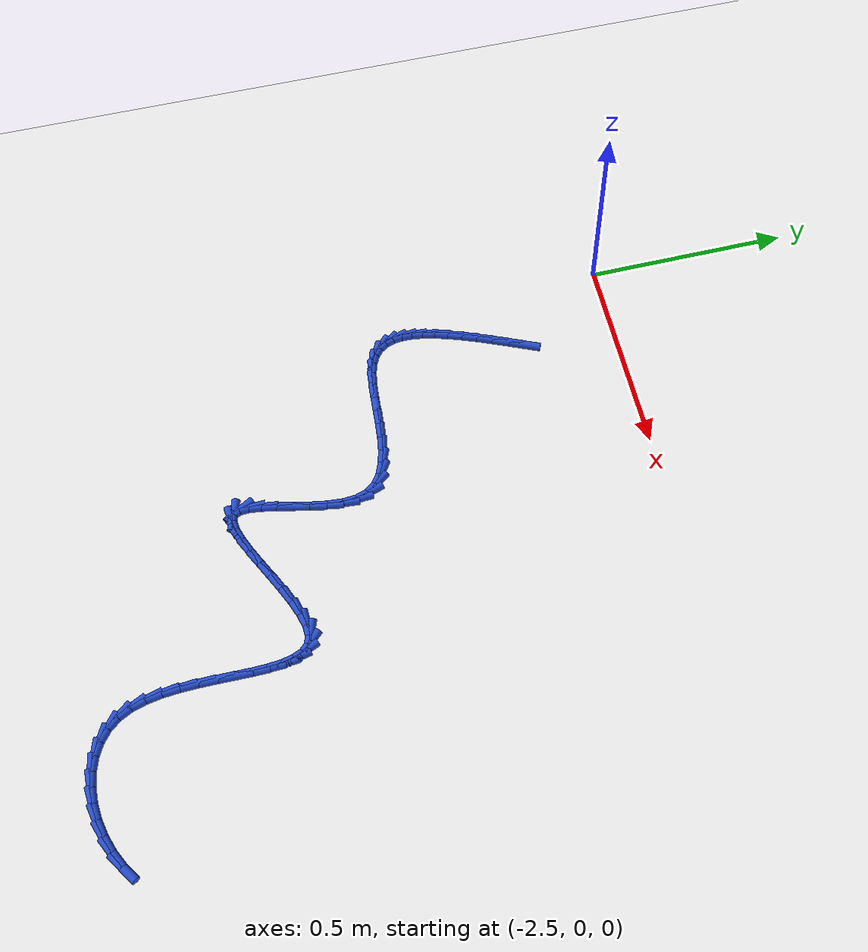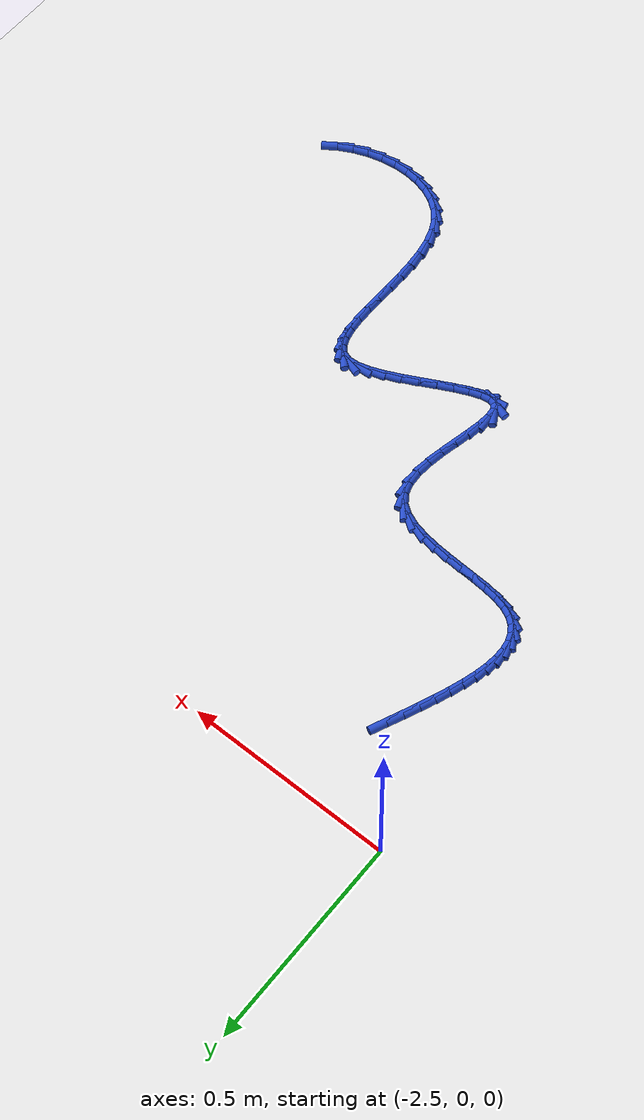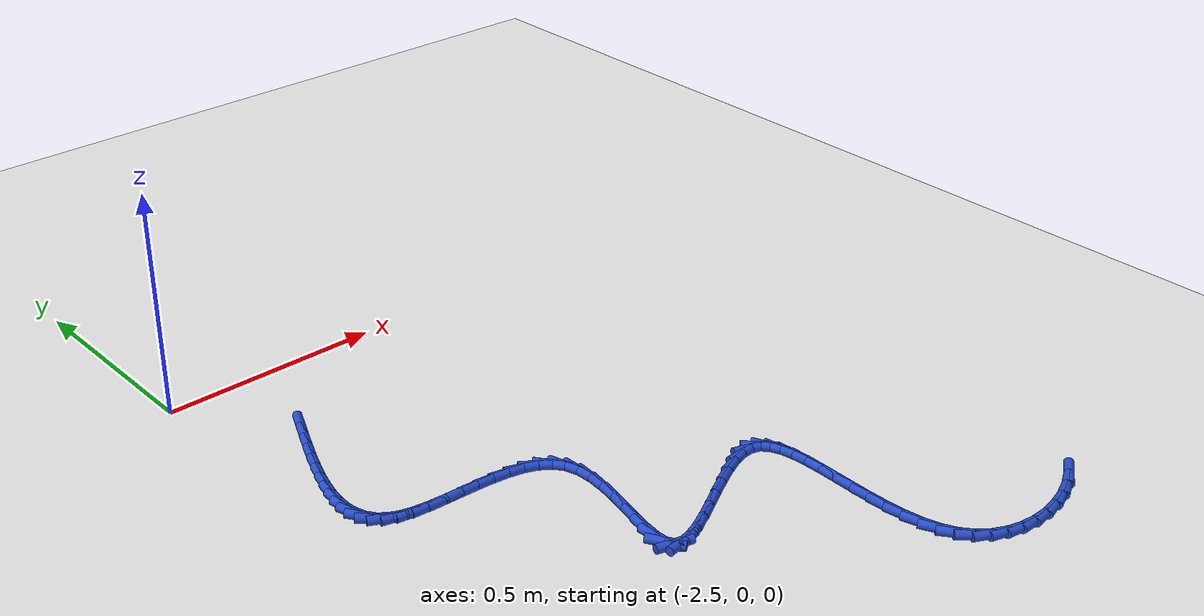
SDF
<sdf version="1.6">
 <world name="default">
  <model name="ground_plane">
   <static>1</static>
   <link name="link">
    <collision name="collision">
     <geometry><plane><normal>0 0 1</normal><size>100 100</size></plane></geometry>
     <surface><friction><ode><mu>100</mu><mu2>50</mu2></ode></friction></surface>
    </collision>
    <visual name="visual">
     <cast_shadows>0</cast_shadows>
     <geometry><plane><normal>0 0 1</normal><size>100 100</size></plane></geometry>
     <material>
      <script><uri>file://media/materials/scripts/gazebo.material</uri><name>Gazebo/WhiteGlow</name></script>
     </material>
    </visual>
   </link>
  </model>
  <model name="line">
   <link name="link_133">
    <pose>-2.3301631001318537 -0.2277371953926198 0.01 0 1.57 1.151415375953774</pose>
    <collision name="collision">
     <geometry><cylinder><radius>0.01</radius><length>0.08</length></cylinder></geometry>
    </collision>
    <visual name="visual">
     <material>
      <script><name>Gazebo/Blue</name><uri>file://media/materials/scripts/gazebo.material</uri></script>
     </material>
     <geometry><cylinder><radius>0.01</radius><length>0.08</length></cylinder></geometry>
    </visual>
   </link>
   <link name="link_134">
    <pose>-2.3469919819279452 -0.2654844812836014 0.01 0 1.57 1.1595146149284716</pose>
    <collision name="collision">
     <geometry><cylinder><radius>0.01</radius><length>0.08</length></cylinder></geometry>
    </collision>
    <visual name="visual">
     <material>
      <script><name>Gazebo/Blue</name><uri>file://media/materials/scripts/gazebo.material</uri></script>
     </material>
     <geometry><cylinder><radius>0.01</radius><length>0.08</length></cylinder></geometry>
    </visual>
   </link>
   <link name="link_135">
    <pose>-2.3630997488659737 -0.30241569647262956 0.01 0 1.57 1.1748796335003198</pose>
    <collision name="collision">
     <geometry><cylinder><radius>0.01</radius><length>0.08</length></cylinder></geometry>
    </collision>
    <visual name="visual">
     <material>
      <script><name>Gazebo/Blue</name><uri>file://media/materials/scripts/gazebo.material</uri></script>
     </material>
     <geometry><cylinder><radius>0.01</radius><length>0.08</length></cylinder></geometry>
    </visual>
   </link>
   <link name="link_136">
    <pose>-2.3781071469350885 -0.33831956997470136 0.01 0 1.57 1.1987318594139833</pose>
    <collision name="collision">
     <geometry><cylinder><radius>0.01</radius><length>0.08</length></cylinder></geometry>
    </collision>
    <visual name="visual">
     <material>
      <script><name>Gazebo/Blue</name><uri>file://media/materials/scripts/gazebo.material</uri></script>
     </material>
     <geometry><cylinder><radius>0.01</radius><length>0.08</length></cylinder></geometry>
    </visual>
   </link>
   <link name="link_137">
    <pose>-2.391634922124441 -0.3729848308048155 0.01 0 1.57 1.2329548355166566</pose>
    <collision name="collision">
     <geometry><cylinder><radius>0.01</radius><length>0.08</length></cylinder></geometry>
    </collision>
    <visual name="visual">
     <material>
      <script><name>Gazebo/Blue</name><uri>file://media/materials/scripts/gazebo.material</uri></script>
     </material>
     <geometry><cylinder><radius>0.01</radius><length>0.08</length></cylinder></geometry>
    </visual>
   </link>
   <link name="link_138">
    <pose>-2.4033038204231802 -0.40620020797796996 0.01 0 1.57 1.2803719867864458</pose>
    <collision name="collision">
     <geometry><cylinder><radius>0.01</radius><length>0.08</length></cylinder></geometry>
    </collision>
    <visual name="visual">
     <material>
      <script><name>Gazebo/Blue</name><uri>file://media/materials/scripts/gazebo.material</uri></script>
     </material>
     <geometry><cylinder><radius>0.01</radius><length>0.08</length></cylinder></geometry>
    </visual>
   </link>
   <link name="link_139">
    <pose>-2.4127345878204585 -0.4377544305091632 0.01 0 1.57 1.345157739945359</pose>
    <collision name="collision">
     <geometry><cylinder><radius>0.01</radius><length>0.08</length></cylinder></geometry>
    </collision>
    <visual name="visual">
     <material>
      <script><name>Gazebo/Blue</name><uri>file://media/materials/scripts/gazebo.material</uri></script>
     </material>
     <geometry><cylinder><radius>0.01</radius><length>0.08</length></cylinder></geometry>
    </visual>
   </link>
   <link name="link_140">
    <pose>-2.4195479703054232 -0.4674362274133933 0.01 0 1.57 1.4333707142312209</pose>
    <collision name="collision">
     <geometry><cylinder><radius>0.01</radius><length>0.08</length></cylinder></geometry>
    </collision>
    <visual name="visual">
     <material>
      <script><name>Gazebo/Blue</name><uri>file://media/materials/scripts/gazebo.material</uri></script>
     </material>
     <geometry><cylinder><radius>0.01</radius><length>0.08</length></cylinder></geometry>
    </visual>
   </link>
   <link name="link_141">
    <pose>-2.423364713867228 -0.495034327705658 0.01 0 1.57 1.553375320705802</pose>
    <collision name="collision">
     <geometry><cylinder><radius>0.01</radius><length>0.08</length></cylinder></geometry>
    </collision>
    <visual name="visual">
     <material>
      <script><name>Gazebo/Blue</name><uri>file://media/materials/scripts/gazebo.material</uri></script>
     </material>
     <geometry><cylinder><radius>0.01</radius><length>0.08</length></cylinder></geometry>
    </visual>
   </link>
   <link name="link_142">
    <pose>-2.4238055644950207 -0.5203374604009556 0.01 0 1.57 -1.4264241481278024</pose>
    <collision name="collision">
     <geometry><cylinder><radius>0.01</radius><length>0.08</length></cylinder></geometry>
    </collision>
    <visual name="visual">
     <material>
      <script><name>Gazebo/Blue</name><uri>file://media/materials/scripts/gazebo.material</uri></script>
     </material>
     <geometry><cylinder><radius>0.01</radius><length>0.08</length></cylinder></geometry>
    </visual>
   </link>
   <link name="link_143">
    <pose>-2.420491268177952 -0.5431343545142844 0.01 0 1.57 -1.2155701346100656</pose>
    <collision name="collision">
     <geometry><cylinder><radius>0.01</radius><length>0.08</length></cylinder></geometry>
    </collision>
    <visual name="visual">
     <material>
      <script><name>Gazebo/Blue</name><uri>file://media/materials/scripts/gazebo.material</uri></script>
     </material>
     <geometry><cylinder><radius>0.01</radius><length>0.08</length></cylinder></geometry>
    </visual>
   </link>
   <link name="link_144">
    <pose>-2.413042570905173 -0.5632137390606423 0.01 0 1.57 -0.9617577974880801</pose>
    <collision name="collision">
     <geometry><cylinder><radius>0.01</radius><length>0.08</length></cylinder></geometry>
    </collision>
    <visual name="visual">
     <material>
      <script><name>Gazebo/Blue</name><uri>file://media/materials/scripts/gazebo.material</uri></script>
     </material>
     <geometry><cylinder><radius>0.01</radius><length>0.08</length></cylinder></geometry>
    </visual>
   </link>
   <link name="link_145">
    <pose>-2.4010802186658333 -0.5803643430550276 0.01 0 1.57 -0.69349405466143</pose>
    <collision name="collision">
     <geometry><cylinder><radius>0.01</radius><length>0.08</length></cylinder></geometry>
    </collision>
    <visual name="visual">
     <material>
      <script><name>Gazebo/Blue</name><uri>file://media/materials/scripts/gazebo.material</uri></script>
     </material>
     <geometry><cylinder><radius>0.01</radius><length>0.08</length></cylinder></geometry>
    </visual>
   </link>
   <link name="link_146">
    <pose>-2.384224957449083 -0.594374895512439 0.01 0 1.57 -0.4489172184200309</pose>
    <collision name="collision">
     <geometry><cylinder><radius>0.01</radius><length>0.08</length></cylinder></geometry>
    </collision>
    <visual name="visual">
     <material>
      <script><name>Gazebo/Blue</name><uri>file://media/materials/scripts/gazebo.material</uri></script>
     </material>
     <geometry><cylinder><radius>0.01</radius><length>0.08</length></cylinder></geometry>
    </visual>
   </link>
   <link name="link_147">
    <pose>-2.3620975332440737 -0.6050341254478735 0.01 0 1.57 -0.25798930539546877</pose>
    <collision name="collision">
     <geometry><cylinder><radius>0.01</radius><length>0.08</length></cylinder></geometry>
    </collision>
    <visual name="visual">
     <material>
      <script><name>Gazebo/Blue</name><uri>file://media/materials/scripts/gazebo.material</uri></script>
     </material>
     <geometry><cylinder><radius>0.01</radius><length>0.08</length></cylinder></geometry>
    </visual>
   </link>
   <link name="link_148">
    <pose>-2.3345612263584683 -0.6123001225802486 0.01 0 1.57 -0.1421375827185218</pose>
    <collision name="collision">
     <geometry><cylinder><radius>0.01</radius><length>0.08</length></cylinder></geometry>
    </collision>
    <visual name="visual">
     <material>
      <script><name>Gazebo/Blue</name><uri>file://media/materials/scripts/gazebo.material</uri></script>
     </material>
     <geometry><cylinder><radius>0.01</radius><length>0.08</length></cylinder></geometry>
    </visual>
   </link>
   <link name="link_149">
    <pose>-2.302552830865902 -0.6168806068176691 0.01 0 1.57 -0.07955614356959471</pose>
    <collision name="collision">
     <geometry><cylinder><radius>0.01</radius><length>0.08</length></cylinder></geometry>
    </collision>
    <visual name="visual">
     <material>
      <script><name>Gazebo/Blue</name><uri>file://media/materials/scripts/gazebo.material</uri></script>
     </material>
     <geometry><cylinder><radius>0.01</radius><length>0.08</length></cylinder></geometry>
    </visual>
   </link>
   <link name="link_150">
    <pose>-2.267306059222115 -0.6196906349371314 0.01 0 1.57 -0.052423365540568305</pose>
    <collision name="collision">
     <geometry><cylinder><radius>0.01</radius><length>0.08</length></cylinder></geometry>
    </collision>
    <visual name="visual">
     <material>
      <script><name>Gazebo/Blue</name><uri>file://media/materials/scripts/gazebo.material</uri></script>
     </material>
     <geometry><cylinder><radius>0.01</radius><length>0.08</length></cylinder></geometry>
    </visual>
   </link>
   <link name="link_151">
    <pose>-2.2300546341986127 -0.6216452709190895 0.01 0 1.57 -0.052927456390029694</pose>
    <collision name="collision">
     <geometry><cylinder><radius>0.01</radius><length>0.08</length></cylinder></geometry>
    </collision>
    <visual name="visual">
     <material>
      <script><name>Gazebo/Blue</name><uri>file://media/materials/scripts/gazebo.material</uri></script>
     </material>
     <geometry><cylinder><radius>0.01</radius><length>0.08</length></cylinder></geometry>
    </visual>
   </link>
   <link name="link_152">
    <pose>-2.1920322785669044 -0.6236595787439982 0.01 0 1.57 -0.07941406046414878</pose>
    <collision name="collision">
     <geometry><cylinder><radius>0.01</radius><length>0.08</length></cylinder></geometry>
    </collision>
    <visual name="visual">
     <material>
      <script><name>Gazebo/Blue</name><uri>file://media/materials/scripts/gazebo.material</uri></script>
     </material>
     <geometry><cylinder><radius>0.01</radius><length>0.08</length></cylinder></geometry>
    </visual>
   </link>
   <link name="link_153">
    <pose>-2.154472715098497 -0.6266486223923129 0.01 0 1.57 -0.1352109118843033</pose>
    <collision name="collision">
     <geometry><cylinder><radius>0.01</radius><length>0.08</length></cylinder></geometry>
    </collision>
    <visual name="visual">
     <material>
      <script><name>Gazebo/Blue</name><uri>file://media/materials/scripts/gazebo.material</uri></script>
     </material>
     <geometry><cylinder><radius>0.01</radius><length>0.08</length></cylinder></geometry>
    </visual>
   </link>
   <link name="link_154">
    <pose>-2.1186096665648964 -0.6315274658444873 0.01 0 1.57 -0.22921421469091152</pose>
    <collision name="collision">
     <geometry><cylinder><radius>0.01</radius><length>0.08</length></cylinder></geometry>
    </collision>
    <visual name="visual">
     <material>
      <script><name>Gazebo/Blue</name><uri>file://media/materials/scripts/gazebo.material</uri></script>
     </material>
     <geometry><cylinder><radius>0.01</radius><length>0.08</length></cylinder></geometry>
    </visual>
   </link>
   <link name="link_155">
    <pose>-2.085676855737611 -0.639211173080977 0.01 0 1.57 -0.37738894977539966</pose>
    <collision name="collision">
     <geometry><cylinder><radius>0.01</radius><length>0.08</length></cylinder></geometry>
    </collision>
    <visual name="visual">
     <material>
      <script><name>Gazebo/Blue</name><uri>file://media/materials/scripts/gazebo.material</uri></script>
     </material>
     <geometry><cylinder><radius>0.01</radius><length>0.08</length></cylinder></geometry>
    </visual>
   </link>
   <link name="link_156">
    <pose>-2.056908005388149 -0.6506148080822359 0.01 0 1.57 -0.601442795233723</pose>
    <collision name="collision">
     <geometry><cylinder><radius>0.01</radius><length>0.08</length></cylinder></geometry>
    </collision>
    <visual name="visual">
     <material>
      <script><name>Gazebo/Blue</name><uri>file://media/materials/scripts/gazebo.material</uri></script>
     </material>
     <geometry><cylinder><radius>0.01</radius><length>0.08</length></cylinder></geometry>
    </visual>
   </link>
   <link name="link_157">
    <pose>-2.0335368382880175 -0.666653434828719 0.01 0 1.57 -0.9112393930069317</pose>
    <collision name="collision">
     <geometry><cylinder><radius>0.01</radius><length>0.08</length></cylinder></geometry>
    </collision>
    <visual name="visual">
     <material>
      <script><name>Gazebo/Blue</name><uri>file://media/materials/scripts/gazebo.material</uri></script>
     </material>
     <geometry><cylinder><radius>0.01</radius><length>0.08</length></cylinder></geometry>
    </visual>
   </link>
   <link name="link_158">
    <pose>-2.0167970772087234 -0.6882421173008813 0.01 0 1.57 -1.2562121053761093</pose>
    <collision name="collision">
     <geometry><cylinder><radius>0.01</radius><length>0.08</length></cylinder></geometry>
    </collision>
    <visual name="visual">
     <material>
      <script><name>Gazebo/Blue</name><uri>file://media/materials/scripts/gazebo.material</uri></script>
     </material>
     <geometry><cylinder><radius>0.01</radius><length>0.08</length></cylinder></geometry>
    </visual>
   </link>
   <link name="link_159">
    <pose>-2.007726189151842 -0.7161191256206816 0.01 0 1.57 -1.5063059731449968</pose>
    <collision name="collision">
     <geometry><cylinder><radius>0.01</radius><length>0.08</length></cylinder></geometry>
    </collision>
    <visual name="visual">
     <material>
      <script><name>Gazebo/Blue</name><uri>file://media/materials/scripts/gazebo.material</uri></script>
     </material>
     <geometry><cylinder><radius>0.01</radius><length>0.08</length></cylinder></geometry>
    </visual>
   </link>
   <link name="link_160">
    <pose>-2.005575998728127 -0.7494141626395533 0.01 0 1.57 1.48800409015775</pose>
    <collision name="collision">
     <geometry><cylinder><radius>0.01</radius><length>0.08</length></cylinder></geometry>
    </collision>
    <visual name="visual">
     <material>
      <script><name>Gazebo/Blue</name><uri>file://media/materials/scripts/gazebo.material</uri></script>
     </material>
     <geometry><cylinder><radius>0.01</radius><length>0.08</length></cylinder></geometry>
    </visual>
   </link>
   <link name="link_161">
    <pose>-2.0086450002643743 -0.7863981389330178 0.01 0 1.57 1.403438307712479</pose>
    <collision name="collision">
     <geometry><cylinder><radius>0.01</radius><length>0.08</length></cylinder></geometry>
    </collision>
    <visual name="visual">
     <material>
      <script><name>Gazebo/Blue</name><uri>file://media/materials/scripts/gazebo.material</uri></script>
     </material>
     <geometry><cylinder><radius>0.01</radius><length>0.08</length></cylinder></geometry>
    </visual>
   </link>
   <link name="link_162">
    <pose>-2.0152227389734843 -0.8253339034110653 0.01 0 1.57 1.3600290549809946</pose>
    <collision name="collision">
     <geometry><cylinder><radius>0.01</radius><length>0.08</length></cylinder></geometry>
    </collision>
    <visual name="visual">
     <material>
      <script><name>Gazebo/Blue</name><uri>file://media/materials/scripts/gazebo.material</uri></script>
     </material>
     <geometry><cylinder><radius>0.01</radius><length>0.08</length></cylinder></geometry>
    </visual>
   </link>
   <link name="link_163">
    <pose>-2.0235987600683565 -0.8644843049836858 0.01 0 1.57 1.3495432523457864</pose>
    <collision name="collision">
     <geometry><cylinder><radius>0.01</radius><length>0.08</length></cylinder></geometry>
    </collision>
    <visual name="visual">
     <material>
      <script><name>Gazebo/Blue</name><uri>file://media/materials/scripts/gazebo.material</uri></script>
     </material>
     <geometry><cylinder><radius>0.01</radius><length>0.08</length></cylinder></geometry>
    </visual>
   </link>
   <link name="link_164">
    <pose>-2.0320626087618905 -0.9021121925608703 0.01 0 1.57 1.3743080470223321</pose>
    <collision name="collision">
     <geometry><cylinder><radius>0.01</radius><length>0.08</length></cylinder></geometry>
    </collision>
    <visual name="visual">
     <material>
      <script><name>Gazebo/Blue</name><uri>file://media/materials/scripts/gazebo.material</uri></script>
     </material>
     <geometry><cylinder><radius>0.01</radius><length>0.08</length></cylinder></geometry>
    </visual>
   </link>
   <link name="link_165">
    <pose>-2.0389038302669866 -0.9364804150526067 0.01 0 1.57 1.4519188580633902</pose>
    <collision name="collision">
     <geometry><cylinder><radius>0.01</radius><length>0.08</length></cylinder></geometry>
    </collision>
    <visual name="visual">
     <material>
      <script><name>Gazebo/Blue</name><uri>file://media/materials/scripts/gazebo.material</uri></script>
     </material>
     <geometry><cylinder><radius>0.01</radius><length>0.08</length></cylinder></geometry>
    </visual>
   </link>
   <link name="link_166">
    <pose>-2.0424119697965444 -0.9658518213688866 0.01 0 1.57 -1.5030744756796595</pose>
    <collision name="collision">
     <geometry><cylinder><radius>0.01</radius><length>0.08</length></cylinder></geometry>
    </collision>
    <visual name="visual">
     <material>
      <script><name>Gazebo/Blue</name><uri>file://media/materials/scripts/gazebo.material</uri></script>
     </material>
     <geometry><cylinder><radius>0.01</radius><length>0.08</length></cylinder></geometry>
    </visual>
   </link>
   <link name="link_167">
    <pose>-2.0408765725634646 -0.9884892604196995 0.01 0 1.57 -1.0414682969263365</pose>
    <collision name="collision">
     <geometry><cylinder><radius>0.01</radius><length>0.08</length></cylinder></geometry>
    </collision>
    <visual name="visual">
     <material>
      <script><name>Gazebo/Blue</name><uri>file://media/materials/scripts/gazebo.material</uri></script>
     </material>
     <geometry><cylinder><radius>0.01</radius><length>0.08</length></cylinder></geometry>
    </visual>
   </link>
   <link name="link_168">
    <pose>-2.032588316577793 -1.0026568630947785 0.01 0 1.57 -0.28963617700662503</pose>
    <collision name="collision">
     <geometry><cylinder><radius>0.01</radius><length>0.08</length></cylinder></geometry>
    </collision>
    <visual name="visual">
     <material>
      <script><name>Gazebo/Blue</name><uri>file://media/materials/scripts/gazebo.material</uri></script>
     </material>
     <geometry><cylinder><radius>0.01</radius><length>0.08</length></cylinder></geometry>
    </visual>
   </link>
   <link name="link_169">
    <pose>-2.0165583131580003 -1.0074340703412048 0.01 0 1.57 0.14463521713627678</pose>
    <collision name="collision">
     <geometry><cylinder><radius>0.01</radius><length>0.08</length></cylinder></geometry>
    </collision>
    <visual name="visual">
     <material>
      <script><name>Gazebo/Blue</name><uri>file://media/materials/scripts/gazebo.material</uri></script>
     </material>
     <geometry><cylinder><radius>0.01</radius><length>0.08</length></cylinder></geometry>
    </visual>
   </link>
   <link name="link_170">
    <pose>-1.9937522597518305 -1.0041123165140866 0.01 0 1.57 0.33216157542356545</pose>
    <collision name="collision">
     <geometry><cylinder><radius>0.01</radius><length>0.08</length></cylinder></geometry>
    </collision>
    <visual name="visual">
     <material>
      <script><name>Gazebo/Blue</name><uri>file://media/materials/scripts/gazebo.material</uri></script>
     </material>
     <geometry><cylinder><radius>0.01</radius><length>0.08</length></cylinder></geometry>
    </visual>
   </link>
   <link name="link_171">
    <pose>-1.9654641463162796 -0.9943545626336883 0.01 0 1.57 0.42071399401878307</pose>
    <collision name="collision">
     <geometry><cylinder><radius>0.01</radius><length>0.08</length></cylinder></geometry>
    </collision>
    <visual name="visual">
     <material>
      <script><name>Gazebo/Blue</name><uri>file://media/materials/scripts/gazebo.material</uri></script>
     </material>
     <geometry><cylinder><radius>0.01</radius><length>0.08</length></cylinder></geometry>
    </visual>
   </link>
   <link name="link_172">
    <pose>-1.9329879628083442 -0.9798237697202727 0.01 0 1.57 0.4626460210737412</pose>
    <collision name="collision">
     <geometry><cylinder><radius>0.01</radius><length>0.08</length></cylinder></geometry>
    </collision>
    <visual name="visual">
     <material>
      <script><name>Gazebo/Blue</name><uri>file://media/materials/scripts/gazebo.material</uri></script>
     </material>
     <geometry><cylinder><radius>0.01</radius><length>0.08</length></cylinder></geometry>
    </visual>
   </link>
   <link name="link_173">
    <pose>-1.8976176991850173 -0.9621828987941033 0.01 0 1.57 0.47660656279553865</pose>
    <collision name="collision">
     <geometry><cylinder><radius>0.01</radius><length>0.08</length></cylinder></geometry>
    </collision>
    <visual name="visual">
     <material>
      <script><name>Gazebo/Blue</name><uri>file://media/materials/scripts/gazebo.material</uri></script>
     </material>
     <geometry><cylinder><radius>0.01</radius><length>0.08</length></cylinder></geometry>
    </visual>
   </link>
   <link name="link_174">
    <pose>-1.8606473454032981 -0.9430949108754447 0.01 0 1.57 0.4686551511852732</pose>
    <collision name="collision">
     <geometry><cylinder><radius>0.01</radius><length>0.08</length></cylinder></geometry>
    </collision>
    <visual name="visual">
     <material>
      <script><name>Gazebo/Blue</name><uri>file://media/materials/scripts/gazebo.material</uri></script>
     </material>
     <geometry><cylinder><radius>0.01</radius><length>0.08</length></cylinder></geometry>
    </visual>
   </link>
   <link name="link_175">
    <pose>-1.8233708914201818 -0.9242227669845603 0.01 0 1.57 0.4379540957955732</pose>
    <collision name="collision">
     <geometry><cylinder><radius>0.01</radius><length>0.08</length></cylinder></geometry>
    </collision>
    <visual name="visual">
     <material>
      <script><name>Gazebo/Blue</name><uri>file://media/materials/scripts/gazebo.material</uri></script>
     </material>
     <geometry><cylinder><radius>0.01</radius><length>0.08</length></cylinder></geometry>
    </visual>
   </link>
   <link name="link_176">
    <pose>-1.7870823271926635 -0.9072294281417136 0.01 0 1.57 0.3766701091298837</pose>
    <collision name="collision">
     <geometry><cylinder><radius>0.01</radius><length>0.08</length></cylinder></geometry>
    </collision>
    <visual name="visual">
     <material>
      <script><name>Gazebo/Blue</name><uri>file://media/materials/scripts/gazebo.material</uri></script>
     </material>
     <geometry><cylinder><radius>0.01</radius><length>0.08</length></cylinder></geometry>
    </visual>
   </link>
   <link name="link_177">
    <pose>-1.7530756426777392 -0.893777855367168 0.01 0 1.57 0.26464655706092705</pose>
    <collision name="collision">
     <geometry><cylinder><radius>0.01</radius><length>0.08</length></cylinder></geometry>
    </collision>
    <visual name="visual">
     <material>
      <script><name>Gazebo/Blue</name><uri>file://media/materials/scripts/gazebo.material</uri></script>
     </material>
     <geometry><cylinder><radius>0.01</radius><length>0.08</length></cylinder></geometry>
    </visual>
   </link>
   <link name="link_178">
    <pose>-1.7226448278324045 -0.8855310096811877 0.01 0 1.57 0.05390336780636269</pose>
    <collision name="collision">
     <geometry><cylinder><radius>0.01</radius><length>0.08</length></cylinder></geometry>
    </collision>
    <visual name="visual">
     <material>
      <script><name>Gazebo/Blue</name><uri>file://media/materials/scripts/gazebo.material</uri></script>
     </material>
     <geometry><cylinder><radius>0.01</radius><length>0.08</length></cylinder></geometry>
    </visual>
   </link>
   <link name="link_179">
    <pose>-1.6970838726136561 -0.8841518521040361 0.01 0 1.57 -0.3333144187514559</pose>
    <collision name="collision">
     <geometry><cylinder><radius>0.01</radius><length>0.08</length></cylinder></geometry>
    </collision>
    <visual name="visual">
     <material>
      <script><name>Gazebo/Blue</name><uri>file://media/materials/scripts/gazebo.material</uri></script>
     </material>
     <geometry><cylinder><radius>0.01</radius><length>0.08</length></cylinder></geometry>
    </visual>
   </link>
   <link name="link_180">
    <pose>-1.6774122393641602 -0.8909628082540325 0.01 0 1.57 -0.7988407774037155</pose>
    <collision name="collision">
     <geometry><cylinder><radius>0.01</radius><length>0.08</length></cylinder></geometry>
    </collision>
    <visual name="visual">
     <material>
      <script><name>Gazebo/Blue</name><uri>file://media/materials/scripts/gazebo.material</uri></script>
     </material>
     <geometry><cylinder><radius>0.01</radius><length>0.08</length></cylinder></geometry>
    </visual>
   </link>
   <link name="link_181">
    <pose>-1.6632326133066162 -0.9055288748394995 0.01 0 1.57 -1.1500410067330025</pose>
    <collision name="collision">
     <geometry><cylinder><radius>0.01</radius><length>0.08</length></cylinder></geometry>
    </collision>
    <visual name="visual">
     <material>
      <script><name>Gazebo/Blue</name><uri>file://media/materials/scripts/gazebo.material</uri></script>
     </material>
     <geometry><cylinder><radius>0.01</radius><length>0.08</length></cylinder></geometry>
    </visual>
   </link>
   <link name="link_182">
    <pose>-1.6536919672909332 -0.9268497641021353 0.01 0 1.57 -1.3613600780338588</pose>
    <collision name="collision">
     <geometry><cylinder><radius>0.01</radius><length>0.08</length></cylinder></geometry>
    </collision>
    <visual name="visual">
     <material>
      <script><name>Gazebo/Blue</name><uri>file://media/materials/scripts/gazebo.material</uri></script>
     </material>
     <geometry><cylinder><radius>0.01</radius><length>0.08</length></cylinder></geometry>
    </visual>
   </link>
   <link name="link_183">
    <pose>-1.647937057613204 -0.9539249196613334 0.01 0 1.57 -1.4823528980648562</pose>
    <collision name="collision">
     <geometry><cylinder><radius>0.01</radius><length>0.08</length></cylinder></geometry>
    </collision>
    <visual name="visual">
     <material>
      <script><name>Gazebo/Blue</name><uri>file://media/materials/scripts/gazebo.material</uri></script>
     </material>
     <geometry><cylinder><radius>0.01</radius><length>0.08</length></cylinder></geometry>
    </visual>
   </link>
   <link name="link_184">
    <pose>-1.6451146405695212 -0.9857537851364868 0.01 0 1.57 -1.5499133050033507</pose>
    <collision name="collision">
     <geometry><cylinder><radius>0.01</radius><length>0.08</length></cylinder></geometry>
    </collision>
    <visual name="visual">
     <material>
      <script><name>Gazebo/Blue</name><uri>file://media/materials/scripts/gazebo.material</uri></script>
     </material>
     <geometry><cylinder><radius>0.01</radius><length>0.08</length></cylinder></geometry>
    </visual>
   </link>
   <link name="link_185">
    <pose>-1.6443714724559768 -1.0213358041469884 0.01 0 1.57 1.5582016635214746</pose>
    <collision name="collision">
     <geometry><cylinder><radius>0.01</radius><length>0.08</length></cylinder></geometry>
    </collision>
    <visual name="visual">
     <material>
      <script><name>Gazebo/Blue</name><uri>file://media/materials/scripts/gazebo.material</uri></script>
     </material>
     <geometry><cylinder><radius>0.01</radius><length>0.08</length></cylinder></geometry>
    </visual>
   </link>
   <link name="link_186">
    <pose>-1.6448543095686636 -1.0596704203122307 0.01 0 1.57 1.549455840661902</pose>
    <collision name="collision">
     <geometry><cylinder><radius>0.01</radius><length>0.08</length></cylinder></geometry>
    </collision>
    <visual name="visual">
     <material>
      <script><name>Gazebo/Blue</name><uri>file://media/materials/scripts/gazebo.material</uri></script>
     </material>
     <geometry><cylinder><radius>0.01</radius><length>0.08</length></cylinder></geometry>
    </visual>
   </link>
   <link name="link_187">
    <pose>-1.6457099082036755 -1.099757077251607 0.01 0 1.57 1.5616111412821438</pose>
    <collision name="collision">
     <geometry><cylinder><radius>0.01</radius><length>0.08</length></cylinder></geometry>
    </collision>
    <visual name="visual">
     <material>
      <script><name>Gazebo/Blue</name><uri>file://media/materials/scripts/gazebo.material</uri></script>
     </material>
     <geometry><cylinder><radius>0.01</radius><length>0.08</length></cylinder></geometry>
    </visual>
   </link>
   <link name="link_188">
    <pose>-1.6460850246571026 -1.1405952185845096 0.01 0 1.57 -1.547183288231876</pose>
    <collision name="collision">
     <geometry><cylinder><radius>0.01</radius><length>0.08</length></cylinder></geometry>
    </collision>
    <visual name="visual">
     <material>
      <script><name>Gazebo/Blue</name><uri>file://media/materials/scripts/gazebo.material</uri></script>
     </material>
     <geometry><cylinder><radius>0.01</radius><length>0.08</length></cylinder></geometry>
    </visual>
   </link>
   <link name="link_189">
    <pose>-1.6451264152250396 -1.1811842879303323 0.01 0 1.57 -1.4910061545077433</pose>
    <collision name="collision">
     <geometry><cylinder><radius>0.01</radius><length>0.08</length></cylinder></geometry>
    </collision>
    <visual name="visual">
     <material>
      <script><name>Gazebo/Blue</name><uri>file://media/materials/scripts/gazebo.material</uri></script>
     </material>
     <geometry><cylinder><radius>0.01</radius><length>0.08</length></cylinder></geometry>
    </visual>
   </link>
   <link name="link_190">
    <pose>-1.6419808362035777 -1.2205237289084683 0.01 0 1.57 -1.405536170233608</pose>
    <collision name="collision">
     <geometry><cylinder><radius>0.01</radius><length>0.08</length></cylinder></geometry>
    </collision>
    <visual name="visual">
     <material>
      <script><name>Gazebo/Blue</name><uri>file://media/materials/scripts/gazebo.material</uri></script>
     </material>
     <geometry><cylinder><radius>0.01</radius><length>0.08</length></cylinder></geometry>
    </visual>
   </link>
   <link name="link_191">
    <pose>-1.6357950438888105 -1.2576129851383084 0.01 0 1.57 -1.2813010253707016</pose>
    <collision name="collision">
     <geometry><cylinder><radius>0.01</radius><length>0.08</length></cylinder></geometry>
    </collision>
    <visual name="visual">
     <material>
      <script><name>Gazebo/Blue</name><uri>file://media/materials/scripts/gazebo.material</uri></script>
     </material>
     <geometry><cylinder><radius>0.01</radius><length>0.08</length></cylinder></geometry>
    </visual>
   </link>
   <link name="link_192">
    <pose>-1.62571579457683 -1.2914515002392468 0.01 0 1.57 -1.1062786437322691</pose>
    <collision name="collision">
     <geometry><cylinder><radius>0.01</radius><length>0.08</length></cylinder></geometry>
    </collision>
    <visual name="visual">
     <material>
      <script><name>Gazebo/Blue</name><uri>file://media/materials/scripts/gazebo.material</uri></script>
     </material>
     <geometry><cylinder><radius>0.01</radius><length>0.08</length></cylinder></geometry>
    </visual>
   </link>
   <link name="link_193">
    <pose>-1.6108899556544471 -1.3210387922192512 0.01 0 1.57 -0.8851223899462966</pose>
    <collision name="collision">
     <geometry><cylinder><radius>0.01</radius><length>0.08</length></cylinder></geometry>
    </collision>
    <visual name="visual">
     <material>
      <script><name>Gazebo/Blue</name><uri>file://media/materials/scripts/gazebo.material</uri></script>
     </material>
     <geometry><cylinder><radius>0.01</radius><length>0.08</length></cylinder></geometry>
    </visual>
   </link>
   <link name="link_194">
    <pose>-1.5907983402058679 -1.345597995829067 0.01 0 1.57 -0.6654607555744737</pose>
    <collision name="collision">
     <geometry><cylinder><radius>0.01</radius><length>0.08</length></cylinder></geometry>
    </collision>
    <visual name="visual">
     <material>
      <script><name>Gazebo/Blue</name><uri>file://media/materials/scripts/gazebo.material</uri></script>
     </material>
     <geometry><cylinder><radius>0.01</radius><length>0.08</length></cylinder></geometry>
    </visual>
   </link>
   <link name="link_195">
    <pose>-1.5659915876282384 -1.3650686229948414 0.01 0 1.57 -0.4660369914868575</pose>
    <collision name="collision">
     <geometry><cylinder><radius>0.01</radius><length>0.08</length></cylinder></geometry>
    </collision>
    <visual name="visual">
     <material>
      <script><name>Gazebo/Blue</name><uri>file://media/materials/scripts/gazebo.material</uri></script>
     </material>
     <geometry><cylinder><radius>0.01</radius><length>0.08</length></cylinder></geometry>
    </visual>
   </link>
   <link name="link_196">
    <pose>-1.537234129916013 -1.3795333454576644 0.01 0 1.57 -0.2902607500499618</pose>
    <collision name="collision">
     <geometry><cylinder><radius>0.01</radius><length>0.08</length></cylinder></geometry>
    </collision>
    <visual name="visual">
     <material>
      <script><name>Gazebo/Blue</name><uri>file://media/materials/scripts/gazebo.material</uri></script>
     </material>
     <geometry><cylinder><radius>0.01</radius><length>0.08</length></cylinder></geometry>
    </visual>
   </link>
   <link name="link_197">
    <pose>-1.5052903990636455 -1.389074834958626 0.01 0 1.57 -0.1359480322319807</pose>
    <collision name="collision">
     <geometry><cylinder><radius>0.01</radius><length>0.08</length></cylinder></geometry>
    </collision>
    <visual name="visual">
     <material>
      <script><name>Gazebo/Blue</name><uri>file://media/materials/scripts/gazebo.material</uri></script>
     </material>
     <geometry><cylinder><radius>0.01</radius><length>0.08</length></cylinder></geometry>
    </visual>
   </link>
   <link name="link_198">
    <pose>-1.4709248270655908 -1.3937757632388157 0.01 0 1.57 0.001581244810964839</pose>
    <collision name="collision">
     <geometry><cylinder><radius>0.01</radius><length>0.08</length></cylinder></geometry>
    </collision>
    <visual name="visual">
     <material>
      <script><name>Gazebo/Blue</name><uri>file://media/materials/scripts/gazebo.material</uri></script>
     </material>
     <geometry><cylinder><radius>0.01</radius><length>0.08</length></cylinder></geometry>
    </visual>
   </link>
   <link name="link_199">
    <pose>-1.4349018459163025 -1.3937188020393239 0.01 0 1.57 0.12749260233936457</pose>
    <collision name="collision">
     <geometry><cylinder><radius>0.01</radius><length>0.08</length></cylinder></geometry>
    </collision>
    <visual name="visual">
     <material>
      <script><name>Gazebo/Blue</name><uri>file://media/materials/scripts/gazebo.material</uri></script>
     </material>
     <geometry><cylinder><radius>0.01</radius><length>0.08</length></cylinder></geometry>
    </visual>
   </link>
   <link name="link_200">
    <pose>-1.3979858876102362 -1.38898662310124 0.01 0 1.57 0.246593848073177</pose>
    <collision name="collision">
     <geometry><cylinder><radius>0.01</radius><length>0.08</length></cylinder></geometry>
    </collision>
    <visual name="visual">
     <material>
      <script><name>Gazebo/Blue</name><uri>file://media/materials/scripts/gazebo.material</uri></script>
     </material>
     <geometry><cylinder><radius>0.01</radius><length>0.08</length></cylinder></geometry>
    </visual>
   </link>
   <link name="link_201">
    <pose>-1.360941384141846 -1.3796618981656543 0.01 0 1.57 0.3631308064805163</pose>
    <collision name="collision">
     <geometry><cylinder><radius>0.01</radius><length>0.08</length></cylinder></geometry>
    </collision>
    <visual name="visual">
     <material>
      <script><name>Gazebo/Blue</name><uri>file://media/materials/scripts/gazebo.material</uri></script>
     </material>
     <geometry><cylinder><radius>0.01</radius><length>0.08</length></cylinder></geometry>
    </visual>
   </link>
   <link name="link_202">
    <pose>-1.324532767505586 -1.365827298973657 0.01 0 1.57 0.4808110017897465</pose>
    <collision name="collision">
     <geometry><cylinder><radius>0.01</radius><length>0.08</length></cylinder></geometry>
    </collision>
    <visual name="visual">
     <material>
      <script><name>Gazebo/Blue</name><uri>file://media/materials/scripts/gazebo.material</uri></script>
     </material>
     <geometry><cylinder><radius>0.01</radius><length>0.08</length></cylinder></geometry>
    </visual>
   </link>
   <link name="link_203">
    <pose>-1.2895244696959112 -1.3475654972663382 0.01 0 1.57 0.6028328396915986</pose>
    <collision name="collision">
     <geometry><cylinder><radius>0.01</radius><length>0.08</length></cylinder></geometry>
    </collision>
    <visual name="visual">
     <material>
      <script><name>Gazebo/Blue</name><uri>file://media/materials/scripts/gazebo.material</uri></script>
     </material>
     <geometry><cylinder><radius>0.01</radius><length>0.08</length></cylinder></geometry>
    </visual>
   </link>
  </model>
 </world>
</sdf>
